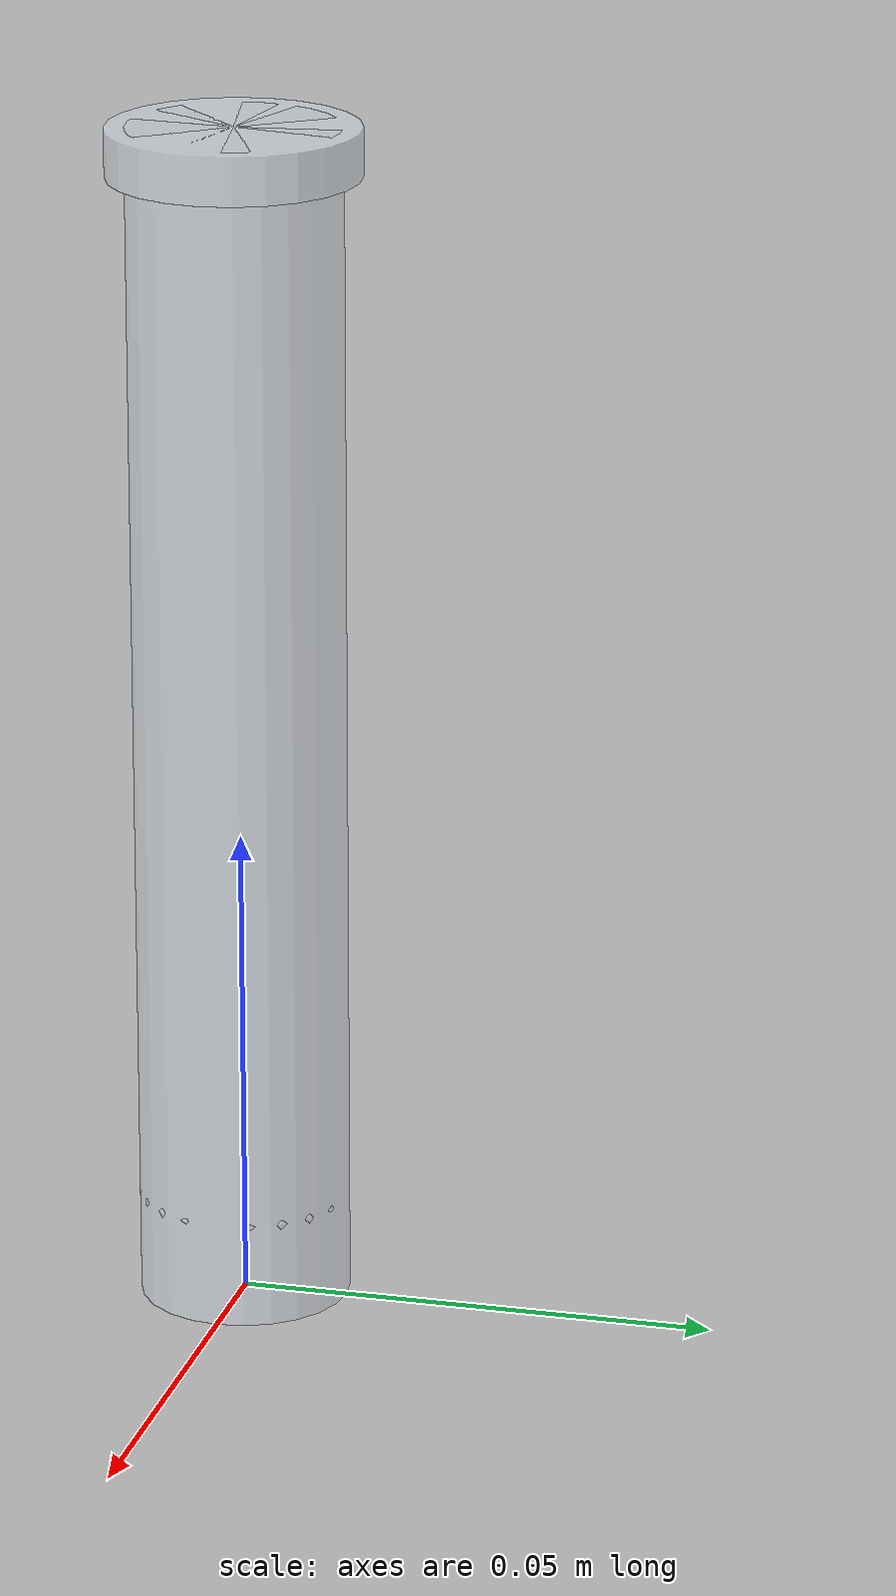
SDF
<?xml version="1.0"?>
<sdf version="1.6">
  <!-- 玻璃试管(可抓取):真玻璃材质,外径 0.022 < 夹爪开度,动态模型。
       玻璃:transparency 0.35 + double_sided + 高 specular/shininess;
       圆底 + 厚边管口 + 内部琥珀色液体,高保真。 -->
  <model name="test_tube">
    <link name="link">
      <inertial>
        <mass>0.02</mass>
        <inertia>
          <ixx>2.3e-5</ixx><ixy>0</ixy><ixz>0</ixz>
          <iyy>2.3e-5</iyy><iyz>0</iyz><izz>1.2e-6</izz>
        </inertia>
      </inertial>

      <!-- 碰撞:实体圆柱(外径 0.022,长 0.125,管底 z=0) -->
      <collision name="collision">
        <pose>0 0 0.0625 0 0 0</pose>
        <geometry>
          <cylinder>
            <radius>0.011</radius>
            <length>0.125</length>
          </cylinder>
        </geometry>
        <surface>
          <friction><ode><mu>1.0</mu><mu2>1.0</mu2></ode></friction>
          <contact>
            <ode>
              <kp>1e6</kp>
              <kd>1.0</kd>
              <min_depth>0.001</min_depth>
              <max_vel>0.01</max_vel>
            </ode>
          </contact>
        </surface>
      </collision>

      <!-- 管口厚边(碰撞,与 visual_lip 一致) -->
      <collision name="collision_lip">
        <pose>0 0 0.1225 0 0 0</pose>
        <geometry>
          <cylinder>
            <radius>0.013</radius>
            <length>0.005</length>
          </cylinder>
        </geometry>
        <surface>
          <friction><ode><mu>1.0</mu><mu2>1.0</mu2></ode></friction>
          <contact>
            <ode>
              <kp>1e6</kp>
              <kd>1.0</kd>
              <min_depth>0.001</min_depth>
              <max_vel>0.01</max_vel>
            </ode>
          </contact>
        </surface>
      </collision>

      <!-- 玻璃管身 -->
      <visual name="visual">
        <transparency>0.35</transparency>
        <pose>0 0 0.0625 0 0 0</pose>
        <geometry>
          <cylinder>
            <radius>0.011</radius>
            <length>0.125</length>
          </cylinder>
        </geometry>
        <material>
          <ambient>0.80 0.90 0.95 0.4</ambient>
          <diffuse>0.90 0.95 1.0 0.4</diffuse>
          <specular>1.0 1.0 1.0 1.0</specular>
          <shininess>128</shininess>
          <double_sided>true</double_sided>
        </material>
      </visual>

      <!-- 圆底(视觉球) -->
      <visual name="visual_round_bottom">
        <transparency>0.35</transparency>
        <pose>0 0 0.011 0 0 0</pose>
        <geometry>
          <sphere><radius>0.011</radius></sphere>
        </geometry>
        <material>
          <ambient>0.80 0.90 0.95 0.4</ambient>
          <diffuse>0.90 0.95 1.0 0.4</diffuse>
          <specular>1.0 1.0 1.0 1.0</specular>
          <shininess>128</shininess>
          <double_sided>true</double_sided>
        </material>
      </visual>

      <!-- 厚边管口(视觉) -->
      <visual name="visual_lip">
        <transparency>0.30</transparency>
        <pose>0 0 0.1225 0 0 0</pose>
        <geometry>
          <cylinder>
            <radius>0.013</radius>
            <length>0.005</length>
          </cylinder>
        </geometry>
        <material>
          <ambient>0.80 0.90 0.95 0.5</ambient>
          <diffuse>0.90 0.95 1.0 0.5</diffuse>
          <specular>1.0 1.0 1.0 1.0</specular>
          <shininess>128</shininess>
          <double_sided>true</double_sided>
        </material>
      </visual>

      <!-- 内部琥珀色液体(视觉) -->
      <visual name="visual_liquid">
        <transparency>0.15</transparency>
        <pose>0 0 0.028 0 0 0</pose>
        <geometry>
          <cylinder>
            <radius>0.008</radius>
            <length>0.05</length>
          </cylinder>
        </geometry>
        <material>
          <ambient>0.70 0.55 0.22 1</ambient>
          <diffuse>0.92 0.76 0.36 1</diffuse>
          <specular>0.40 0.40 0.40 1</specular>
          <shininess>32</shininess>
        </material>
      </visual>
    </link>
  </model>
</sdf>
